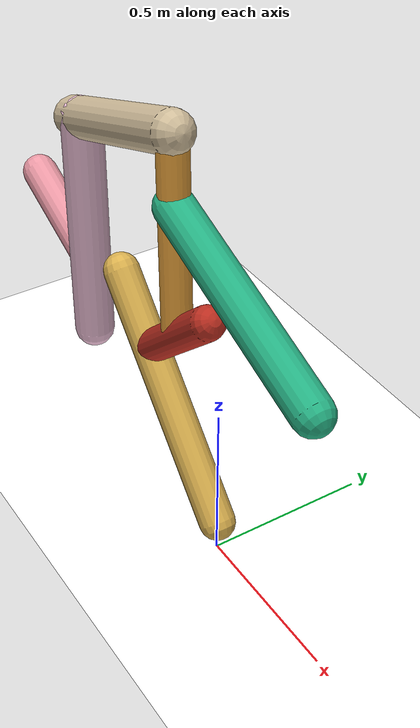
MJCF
<mujoco model="morphology">
  <option timestep="0.01"/>
  <default>
    <default class="/"/>
    <default class="0/"/>
    <default class="0/1/"/>
    <default class="0/1/2/"/>
    <default class="0/1/2/3/"/>
    <default class="0/1/2/3/4/"/>
    <default class="0/1/2/3/4/5/"/>
    <default class="0/1/2/6/"/>
  </default>
  <asset>
    <texture name="texplane" type="2d" builtin="checker" rgb1="0.10000000000000001 0.20000000000000001 0.29999999999999999" rgb2="0.20000000000000001 0.29999999999999999 0.40000000000000002" width="300" height="300"/>
    <material name="MatPlane" class="/" texture="texplane" texrepeat="20 20" specular="1" shininess="1" reflectance="0.5"/>
  </asset>
  <worldbody>
    <light name="//unnamed_light_0" class="/" directional="true" pos="0 0 1.5" dir="0 0 -1.3" cutoff="100" exponent="1" diffuse="1 1 1" specular="0.10000000000000001 0.10000000000000001 0.10000000000000001"/>
    <geom name="ground" class="/" type="plane" size="15 15 0.5" material="MatPlane" rgba="1 1 1 1"/>
    <site name="body" class="/" size="9.9999999999999995e-07 9.9999999999999995e-07 9.9999999999999995e-07" pos="0 0 0.10000000000000001"/>
    <body pos="0 0 0.10000000000000001" name="0/">
      <joint name="0/rootx/" class="/" type="slide" axis="1 0 0" limited="false" stiffness="0" armature="0" damping="0"/>
      <joint name="0/rootz/" class="/" type="slide" axis="0 0 1" limited="false" stiffness="0" armature="0" damping="0"/>
      <joint name="0/rooty/" class="/" type="hinge" axis="0 1 0" limited="false" stiffness="0" armature="0" damping="0"/>
      <geom name="0/geom" class="0/" type="capsule" contype="1" conaffinity="1" condim="3" size="0.054338195286198085" rgba="0.86022244349852439 0.69470493976804226 0.30831198328953058 1" friction="0.59999999999999998 0.10000000000000001 0.10000000000000001" fromto="0 0 0 -0.5307697395257428 0 0.5797396758473401"/>
      <site name="0/end0" class="0/" size="0.0050000000000000001" pos="-0.5307697395257428 0 0.5797396758473401"/>
      <site name="0/attach1" class="0/" size="9.9999999999999995e-07 9.9999999999999995e-07 9.9999999999999995e-07" pos="-0.36952883657679669 0 0.40362234690451199"/>
      <body pos="-0.36952883657679669 0 0.40362234690451199" name="0/1/">
        <joint name="0/1/joint/" class="0/" type="hinge" axis="0 1 0" limited="true" range="-60.77727929736028 60.77727929736028"/>
        <geom name="0/1/geom" class="0/1/" type="capsule" contype="1" conaffinity="1" condim="3" size="0.050380555513738629" rgba="0.73405368132091231 0.18155018361867781 0.12720212044917578 1" friction="0.59999999999999998 0.10000000000000001 0.10000000000000001" fromto="0 0 0 0.31060934305598487 0 0.2794289538064938"/>
        <site name="0/1/end1" class="0/1/" size="0.0050000000000000001" pos="0.31060934305598487 0 0.2794289538064938"/>
        <site name="0/1/attach2" class="0/1/" size="9.9999999999999995e-07 9.9999999999999995e-07 9.9999999999999995e-07" pos="0.15266176357482661 0 0.13733687616176862"/>
        <body pos="0.15266176357482661 0 0.13733687616176862" name="0/1/2/">
          <geom name="0/1/2/geom" class="0/1/2/" type="capsule" contype="1" conaffinity="1" condim="3" size="0.04497085541509236" rgba="0.98669042349635028 0.69341662023670403 0.25293864783494213 1" friction="0.59999999999999998 0.10000000000000001 0.10000000000000001" fromto="0 0 0 -0.012775457288330627 0 0.63453214236296573"/>
          <site name="0/1/2/end2" class="0/1/2/" size="0.0050000000000000001" pos="-0.012775457288330627 0 0.63453214236296573"/>
          <site name="0/1/2/attach3" class="0/1/2/" size="9.9999999999999995e-07 9.9999999999999995e-07 9.9999999999999995e-07" pos="-0.01255375340723827 0 0.62352054133258883"/>
          <body pos="-0.01255375340723827 0 0.62352054133258883" name="0/1/2/3/">
            <joint name="0/1/2/3/joint/" class="0/1/2/" type="hinge" axis="0 1 0" limited="true" range="-66.706515430339934 66.706515430339934"/>
            <geom name="0/1/2/3/geom" class="0/1/2/3/" type="capsule" contype="1" conaffinity="1" condim="3" size="0.06187771082294008" rgba="0.81021531513288592 0.73510632608195603 0.60168870685279119 1" friction="0.59999999999999998 0.10000000000000001 0.10000000000000001" fromto="0 0 0 -0.5450166364934258 0 -0.19447538506952233"/>
            <site name="0/1/2/3/end3" class="0/1/2/3/" size="0.0050000000000000001" pos="-0.5450166364934258 0 -0.19447538506952233"/>
            <site name="0/1/2/3/attach4" class="0/1/2/3/" size="9.9999999999999995e-07 9.9999999999999995e-07 9.9999999999999995e-07" pos="-0.50359700752713732 0 -0.17969583935788816"/>
            <body pos="-0.50359700752713732 0 -0.17969583935788816" name="0/1/2/3/4/">
              <joint name="0/1/2/3/4/joint/" class="0/1/2/3/" type="hinge" axis="0 1 0" limited="true" range="-54.192711316990859 54.192711316990859"/>
              <geom name="0/1/2/3/4/geom" class="0/1/2/3/4/" type="capsule" contype="1" conaffinity="1" condim="3" size="0.062747154871195004" rgba="0.95743123686324294 0.76994774112393816 0.86655619198738332 1" friction="0.59999999999999998 0.10000000000000001 0.10000000000000001" fromto="0 0 0 0.0048334465524404457 0 -0.73170278550304291"/>
              <site name="0/1/2/3/4/end4" class="0/1/2/3/4/" size="0.0050000000000000001" pos="0.0048334465524404457 0 -0.73170278550304291"/>
              <site name="0/1/2/3/4/attach5" class="0/1/2/3/4/" size="9.9999999999999995e-07 9.9999999999999995e-07 9.9999999999999995e-07" pos="0.0031229436104009585 0 -0.47276131305218683"/>
              <body pos="0.0031229436104009585 0 -0.47276131305218683" name="0/1/2/3/4/5/">
                <geom name="0/1/2/3/4/5/geom" class="0/1/2/3/4/5/" type="capsule" contype="1" conaffinity="1" condim="3" size="0.054347244586910391" rgba="0.92022192660965063 0.59950341477736979 0.64665232690977703 1" friction="0.59999999999999998 0.10000000000000001 0.10000000000000001" fromto="0 0 0 -0.32365937661862854 0 0.14372319500250086"/>
                <site name="0/1/2/3/4/5/end5" class="0/1/2/3/4/5/" size="0.0050000000000000001" pos="-0.32365937661862854 0 0.14372319500250086"/>
              </body>
            </body>
          </body>
          <site name="0/1/2/attach6" class="0/1/2/" size="9.9999999999999995e-07 9.9999999999999995e-07 9.9999999999999995e-07" pos="-0.0082689266499713608 0 0.41070152119260567"/>
          <body pos="-0.0082689266499713608 0 0.41070152119260567" name="0/1/2/6/">
            <joint name="0/1/2/6/joint/" class="0/1/2/" type="hinge" axis="0 1 0" limited="true" range="-59.91205862623498 59.91205862623498"/>
            <geom name="0/1/2/6/geom" class="0/1/2/6/" type="capsule" contype="1" conaffinity="1" condim="3" size="0.05856514449453866" rgba="0.1471627703130205 0.69621137453457715 0.51735253197968978 1" friction="0.59999999999999998 0.10000000000000001 0.10000000000000001" fromto="0 0 0 0.63145213189841032 0 -0.24469870755135659"/>
            <site name="0/1/2/6/end6" class="0/1/2/6/" size="0.0050000000000000001" pos="0.63145213189841032 0 -0.24469870755135659"/>
          </body>
        </body>
      </body>
      <camera name="0/side" class="0/" mode="trackcom" pos="0.40000000000000002 -4 0.20000000000000001" quat="0.70699999999999996 0.70699999999999996 0 0"/>
    </body>
  </worldbody>
  <actuator>
    <motor name="0/1/motor" class="0/1/" ctrllimited="true" ctrlrange="-1 1" gear="62" joint="0/1/joint/"/>
    <motor name="0/1/2/3/motor" class="0/1/2/3/" ctrllimited="true" ctrlrange="-1 1" gear="66" joint="0/1/2/3/joint/"/>
    <motor name="0/1/2/3/4/motor" class="0/1/2/3/4/" ctrllimited="true" ctrlrange="-1 1" gear="82" joint="0/1/2/3/4/joint/"/>
    <motor name="0/1/2/6/motor" class="0/1/2/6/" ctrllimited="true" ctrlrange="-1 1" gear="54" joint="0/1/2/6/joint/"/>
  </actuator>
  <sensor>
    <subtreelinvel name="velocity" body="0/"/>
  </sensor>
</mujoco>
